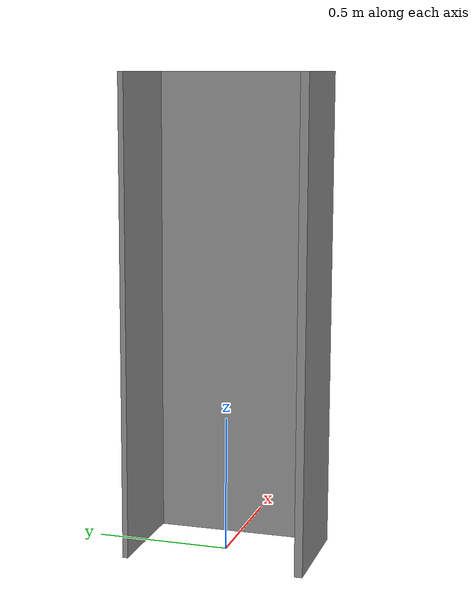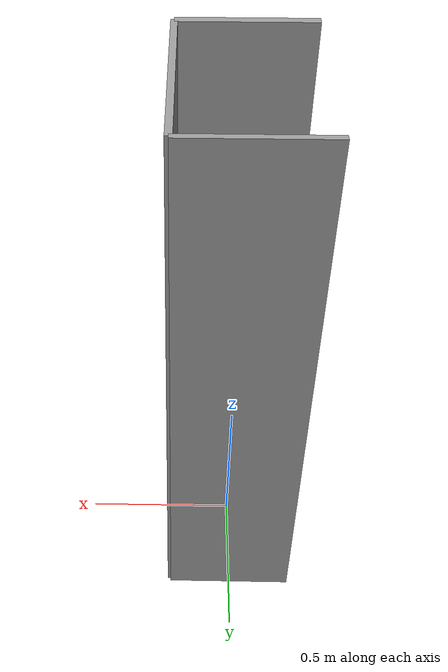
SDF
<?xml version="1.0"?>
<sdf version="1.6">
  <model name="robotics_testlab_B/plastic_cabinet.frame">
    <link name="1_link">
      <collision name="1_col">
        <geometry>
          <box>
            <size>0.41 0.03 1.755</size>
          </box>
        </geometry>
      </collision>
      <visual name="1_vis">
        <geometry>
          <box>
            <size>0.41 0.03 1.755</size>
          </box>
        </geometry>
        <material>
          <ambient>0.6 0.6 0.6 1</ambient>
        </material>
      </visual>
      <pose>0 -0.325 0.8775 0 0 0</pose>
    </link>
    <link name="2_link">
      <collision name="2_col">
        <geometry>
          <box>
            <size>0.41 0.02 1.755</size>
          </box>
        </geometry>
      </collision>
      <visual name="2_vis">
        <geometry>
          <box>
            <size>0.41 0.02 1.755</size>
          </box>
        </geometry>
        <material>
          <ambient>0.6 0.6 0.6 1</ambient>
        </material>
      </visual>
      <pose>0 0.325 0.8775 0 0 0</pose>
    </link>
    <link name="3_link">
      <collision name="3_col">
        <geometry>
          <box>
            <size>0.02 0.65 1.755</size>
          </box>
        </geometry>
      </collision>
      <visual name="3_vis">
        <geometry>
          <box>
            <size>0.02 0.65 1.755</size>
          </box>
        </geometry>
        <material>
          <ambient>0.6 0.6 0.6 1</ambient>
        </material>
      </visual>
      <pose>0.205 0 0.8775 0 0 0</pose>
    </link>
    <static>true</static>
  </model>
</sdf>
